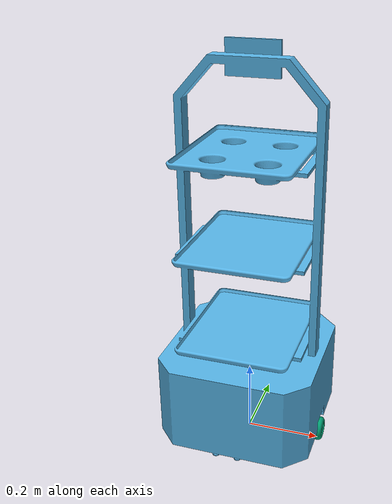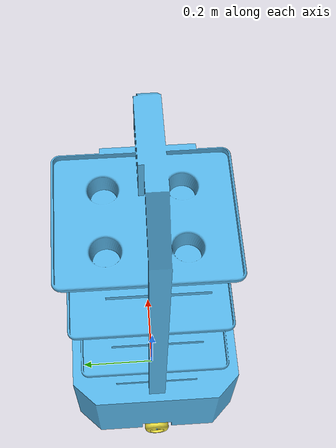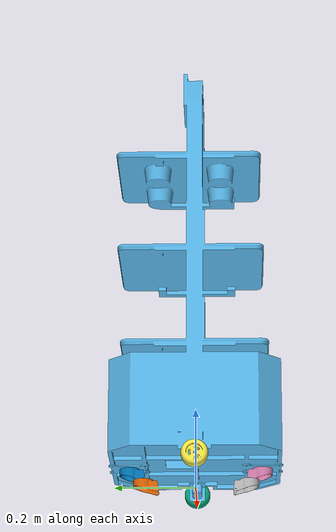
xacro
<?xml version="1.0"?>
<robot name="body" xmlns:xacro="http://ros.org/wiki/xacro">
  <xacro:include filename="$(find servebot_description)/urdf/common_properties.urdf.xacro"/>
  <xacro:include filename="$(find servebot_description)/urdf/body_gazebo.urdf.xacro"/>

  <link name="base_footprint"/>

  <joint name="base_joint" type="fixed">
    <origin xyz="0 0 0.050" rpy="0 0 0" />
    <parent link="base_footprint"/>
    <child link="base_link" />
  </joint>

  <link name="base_link">

    <visual>
      <geometry>
        <mesh filename="package://servebot_description/meshes/base_servebot.dae" scale="0.001 0.001 0.001"/>
      </geometry>
      <origin xyz="0 0 0" rpy="0 0 0"/>
    </visual>

    <collision>
      <geometry>
        <box size="0.430 0.430 1.050"/>
      </geometry>
      <origin xyz="0 0 0.488" rpy="0 0 0"/>
    </collision>

    <inertial>
      <origin xyz="0.01 0 0"/>
      <mass value="6"/>
      <inertia ixx="0.019995" ixy="0.0" ixz="0.0"
               iyy="0.019995" iyz="0.0"
               izz="0.03675" />
    </inertial>

  </link>

  <joint name="wheel_left_joint" type="continuous">
    <parent link="base_link"/>
    <child link="wheel_left_link"/>
    <origin xyz="0.203 0 -0.0175" rpy="0 0 0"/>
    <axis xyz="1 0 0"/>
  </joint>

  <link name="wheel_left_link">
    <visual>
      <origin xyz="0 0 0" rpy="0 0 0"/>
      <geometry>
        <mesh filename="package://servebot_description/meshes/drive_wheel_servebot.dae" scale="0.001 0.001 0.001"/>
      </geometry>
    </visual>

    <collision>
      <geometry>
        <cylinder length="0.015" radius="0.03"/>
      </geometry>
      <origin xyz="0 0 0" rpy="0 ${M_PI/2} 0"/>
    </collision>

    <inertial>
      <mass value="0.01" />
      <origin xyz="0 0 0" />
      <inertia ixx="0.001" ixy="0.0" ixz="0.0"
               iyy="0.001" iyz="0.0"
               izz="0.001" />
    </inertial>

  </link>

  <joint name="wheel_right_joint" type="continuous">
    <parent link="base_link"/>
    <child link="wheel_right_link"/>
    <origin xyz="-0.203 0 -0.0175" rpy="0 0 0"/>
    <axis xyz="1 0 0"/>
  </joint>

  <link name="wheel_right_link">
    <visual>
      <origin xyz="0 0 0" rpy="0 0 0"/>
      <geometry>
        <mesh filename="package://servebot_description/meshes/drive_wheel_servebot.dae" scale="0.001 0.001 0.001"/>
      </geometry>
    </visual>

    <collision>
      <geometry>
        <cylinder length="0.015" radius="0.03"/>
      </geometry>
      <origin xyz="0 0 0" rpy="0 ${-M_PI/2} 0"/>
    </collision>

    <inertial>
      <mass value="0.01" />
      <origin xyz="0 0 0" />
      <inertia ixx="0.001" ixy="0.0" ixz="0.0"
               iyy="0.001" iyz="0.0"
               izz="0.001" />
    </inertial>
  </link>

  <joint name="caster_front_joint_1" type="continuous">
    <parent link="base_link"/>
    <child link="caster_front_link_1"/>
    <origin xyz="0 0.165 -0.003" rpy="0 0 0"/>
    <axis xyz="0 0 1"/>
  </joint>

  <link name="caster_front_link_1">
    <visual>
      <origin xyz="0 0 0" rpy="0 0 0"/>
      <geometry>
        <mesh filename="package://servebot_description/meshes/caster_wheel_1_servebot.dae" scale="0.001 0.001 0.001"/>
      </geometry>
    </visual>

    <collision>
      <geometry>
        <box size="0.050 0.064 0.033"/>
      </geometry>
      <origin xyz="0 0 0" rpy="0 0 0"/>
    </collision>

    <inertial>
      <mass value="0.005" />
      <origin xyz="0 0 0" />
      <inertia ixx="0.0005" ixy="0.0" ixz="0.0"
               iyy="0.0005" iyz="0.0"
               izz="0.0005" />
    </inertial>
  </link>

  <joint name="caster_front_joint_2" type="continuous">
    <parent link="caster_front_link_1"/>
    <child link="caster_front_link_2"/>
    <origin xyz="0 -0.03378 -0.02786" rpy="0 0 0"/>
    <axis xyz="1 0 0"/>
  </joint>

  <link name="caster_front_link_2">
    <visual>
      <origin xyz="0 0 0" rpy="0 0 0"/>
      <geometry>
        <mesh filename="package://servebot_description/meshes/caster_wheel_2_servebot.dae" scale="0.001 0.001 0.001"/>
      </geometry>
    </visual>

    <collision>
      <geometry>
        <cylinder length="0.023" radius="0.010"/>
      </geometry>
      <origin xyz="0 0 0" rpy="0 ${M_PI/2} 0"/>
    </collision>

    <inertial>
      <mass value="0.005" />
      <origin xyz="0 0 0" />
      <inertia ixx="0.0005" ixy="0.0" ixz="0.0"
               iyy="0.0005" iyz="0.0"
               izz="0.0005" />
    </inertial>
  </link>

  <joint name="caster_back_joint_1" type="continuous">
    <parent link="base_link"/>
    <child link="caster_back_link_1"/>
    <origin xyz="0 -0.165 -0.003" rpy="0 0 ${M_PI}"/>
    <axis xyz="0 0 1"/>
  </joint>

  <link name="caster_back_link_1">
    <visual>
      <origin xyz="0 0 0" rpy="0 0 0"/>
      <geometry>
        <mesh filename="package://servebot_description/meshes/caster_wheel_1_servebot.dae" scale="0.001 0.001 0.001"/>
      </geometry>
    </visual>

    <collision>
      <geometry>
        <box size="0.050 0.064 0.033"/>
      </geometry>
      <origin xyz="0 0 0" rpy="0 0 0"/>
    </collision>

    <inertial>
      <mass value="0.005" />
      <origin xyz="0 0 0" />
      <inertia ixx="0.0005" ixy="0.0" ixz="0.0"
               iyy="0.0005" iyz="0.0"
               izz="0.0005" />
    </inertial>
  </link>

  <joint name="caster_back_joint_2" type="continuous">
    <parent link="caster_back_link_1"/>
    <child link="caster_back_link_2"/>
    <origin xyz="0 -0.03378 -0.02786" rpy="0 0 0"/>
    <axis xyz="1 0 0"/>
  </joint>

  <link name="caster_back_link_2">
    <visual>
      <origin xyz="0 0 0" rpy="0 0 0"/>
      <geometry>
        <mesh filename="package://servebot_description/meshes/caster_wheel_2_servebot.dae" scale="0.001 0.001 0.001"/>
      </geometry>
    </visual>

    <collision>
      <geometry>
        <cylinder length="0.023" radius="0.010"/>
      </geometry>
      <origin xyz="0 0 0" rpy="0 ${M_PI/2} 0"/>
    </collision>

    <inertial>
      <mass value="0.005" />
      <origin xyz="0 0 0" />
      <inertia ixx="0.0005" ixy="0.0" ixz="0.0"
               iyy="0.0005" iyz="0.0"
               izz="0.0005" />
    </inertial>
  </link>

  <joint name="gyro_joint" type="fixed">
    <axis xyz="0 1 0"/>
    <origin xyz="0 0 0" rpy="0 0 0"/>
    <parent link="base_link"/>
    <child link="gyro_link"/>
  </joint>

  <link name="gyro_link">
    <inertial>
      <mass value="0.001"/>
      <origin xyz="0 0 0" rpy="0 0 0"/>
      <inertia ixx="0.0001" ixy="0" ixz="0"
               iyy="0.000001" iyz="0"
               izz="0.0001"/>
    </inertial>
  </link>

</robot>

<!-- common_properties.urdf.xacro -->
<!--
  Various useful properties such as constants and materials
 -->
<robot name="xacro_properties" xmlns:xacro="http://ros.org/wiki/xacro">
  <xacro:property name="M_PI" value="3.1415926535897931" />
  <xacro:property name="material_white">
    <material name="white">
      <color rgba="1 1 1 1"/>
    </material>
  </xacro:property>
  <xacro:property name="material_grey">
    <material name="grey">
      <color rgba="0.5 0.5 0.5 1"/>
    </material>
  </xacro:property>
  <xacro:property name="material_light_grey">
    <material name="light_grey">
      <color rgba="0.6 0.6 0.6 1"/>
    </material>
  </xacro:property>
  <xacro:property name="material_dark_grey">
    <material name="dark_grey">
      <color rgba="0.3 0.3 0.3 1"/>
    </material>
  </xacro:property>
  <xacro:property name="material_black">
    <material name="black">
      <color rgba="0.1 0.1 0.1 1"/>
    </material>
  </xacro:property>
  <xacro:property name="material_red">
    <material name="red">
      <color rgba="1 0 0 1"/>
    </material>
  </xacro:property>
  <xacro:property name="material_green">
    <material name="green">
      <color rgba="0.0 0.8 0.0 1"/>
    </material>
  </xacro:property>
  <xacro:property name="material_blue">
    <material name="blue">
      <color rgba="0.0 0.0 1.0 1"/>
    </material>
  </xacro:property>
  <xacro:property name="material_grey_blue">
    <material name="grey_blue">
      <color rgba="0.4 0.4 1.0 1"/>
    </material>
  </xacro:property>
  <xacro:property name="material_orange">
    <material name="orange">
      <color rgba="1.0 0.7 0.0 1"/>
    </material>
  </xacro:property>
</robot>
